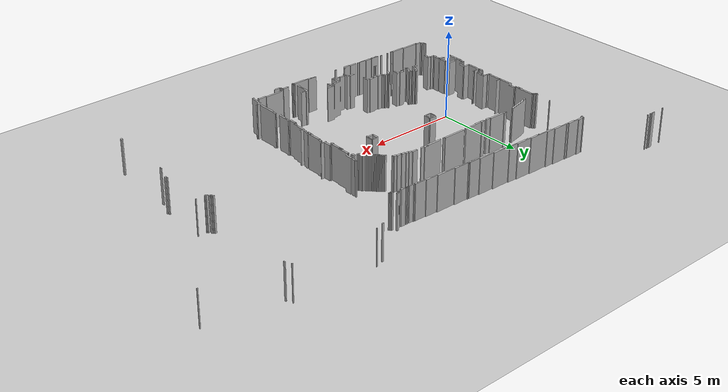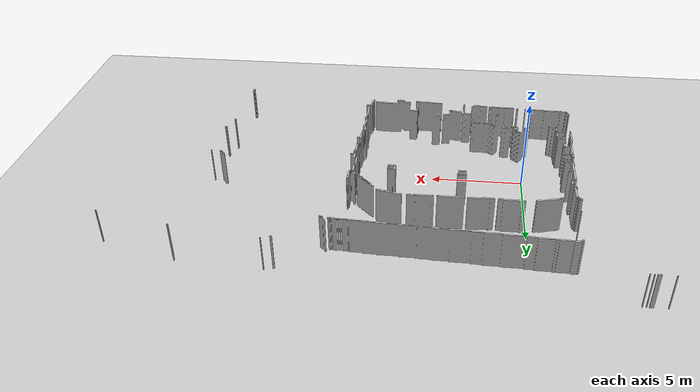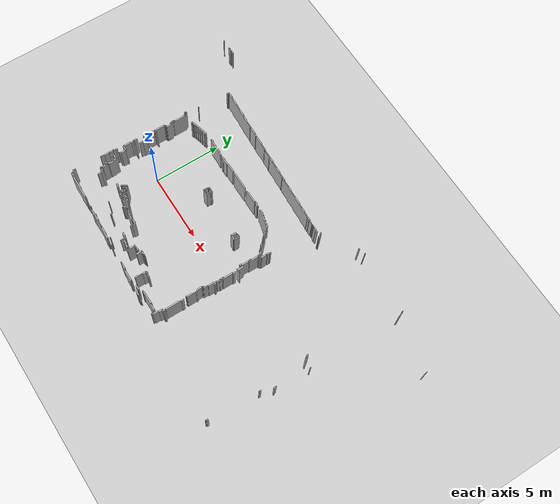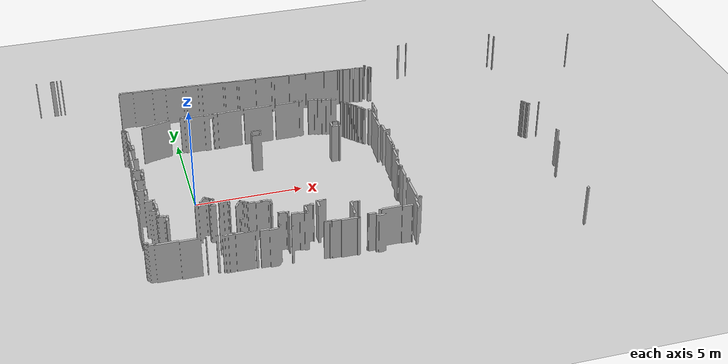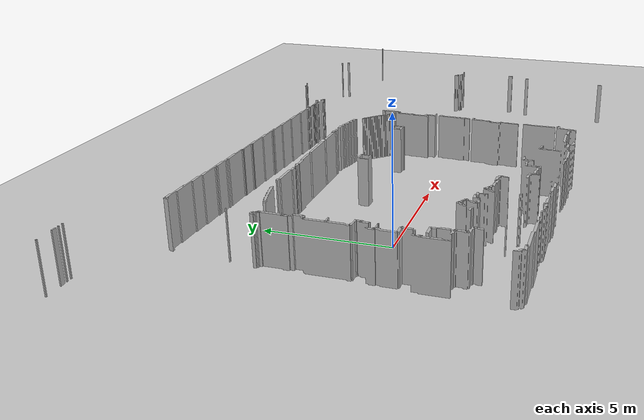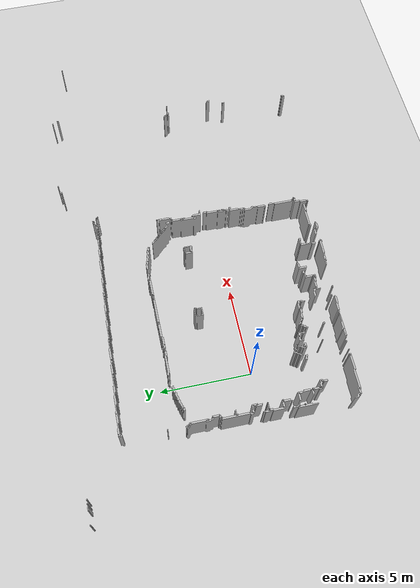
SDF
<?xml version="1.0" ?>
<sdf version="1.4">
  <world name="default">
    <include>
      <uri>model://ground_plane</uri>
    </include>
    <include>
      <uri>model://sun</uri>
    </include>
    <include>
      <uri>model://map3</uri>
    </include>
  </world>
</sdf>

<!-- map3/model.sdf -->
<sdf version="1.4">
  <model name="map">
    <link name="link">
      <inertial>
        <mass>15</mass>
        <inertia>
          <ixx>0.0</ixx>
          <ixy>0.0</ixy>
          <ixz>0.0</ixz>
          <iyy>0.0</iyy>
          <iyz>0.0</iyz>
          <izz>0.0</izz>
        </inertia>
      </inertial>
      <collision name="collision">
        <pose>0 0 0 0 0 0</pose>
        <geometry>
          <mesh>
            <uri>model://map3/meshes/map3.stl</uri>
          </mesh>
        </geometry>
      </collision>
      <visual name="visual">
        <pose>0 0 0 0 0 0</pose>
        <geometry>
          <mesh>
            <uri>model://map3/meshes/map3.stl</uri>
          </mesh>
        </geometry>
      </visual>
    </link>
    <static>1</static>
  </model>
</sdf>
